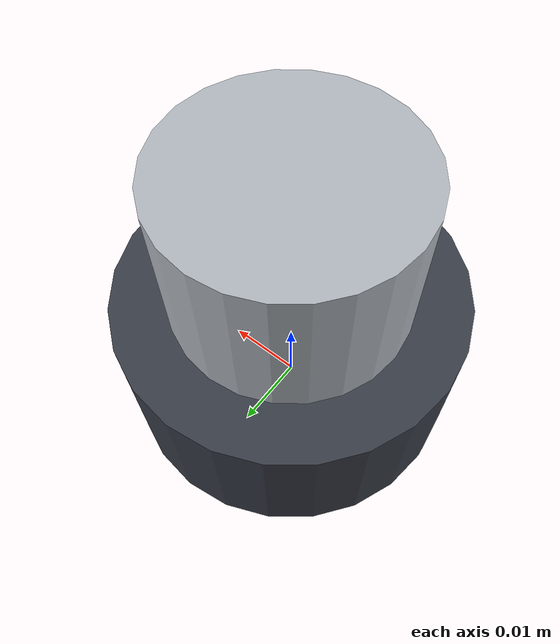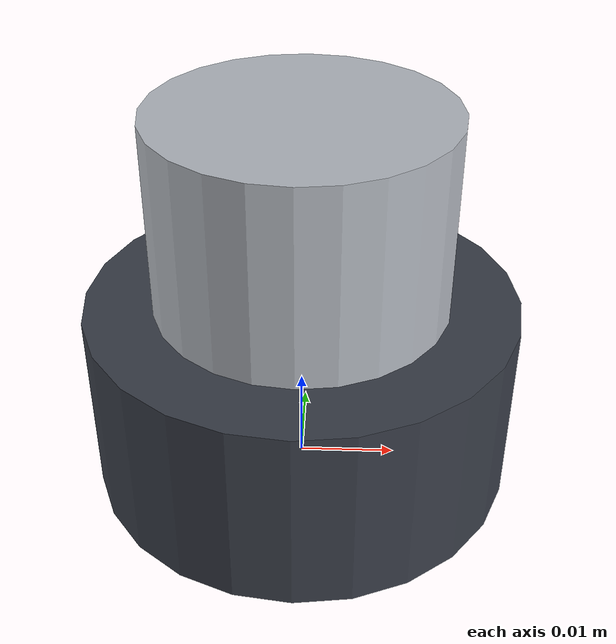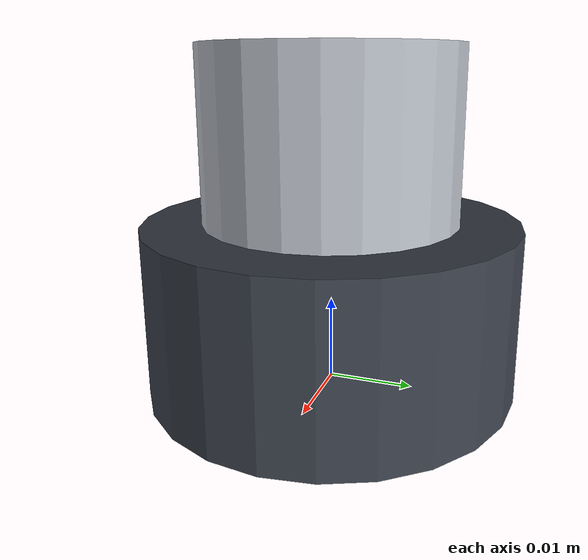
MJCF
<?xml version='1.0' encoding='utf-8'?>
<mujoco model="knob_quantity1_04">
  <worldbody>
    <body name="seq_11">
      <geom name="seq_11_base" type="cylinder" pos="0 0 0.01" size="0.022 0.01" rgba="0.22 0.24 0.28 1" />
      <geom name="seq_11_cap" type="cylinder" pos="0 0 0.026" size="0.015 0.014" rgba="0.70 0.72 0.75 1" />
    </body>
  </worldbody>
</mujoco>
